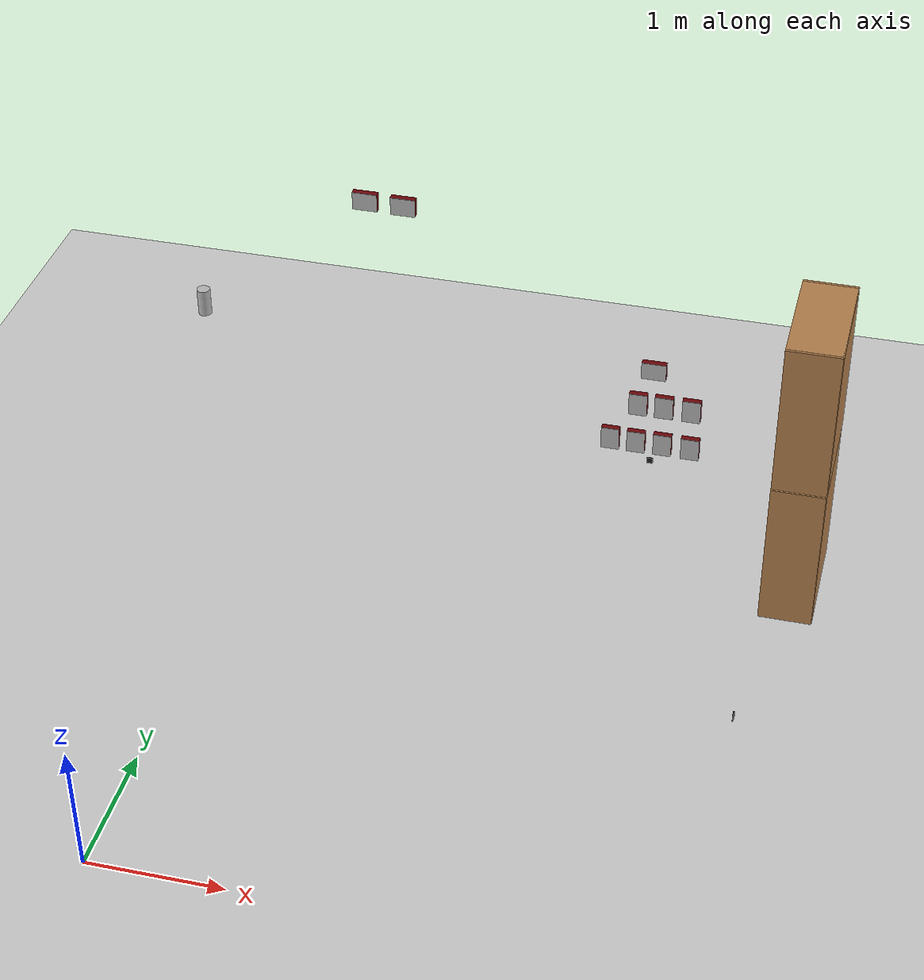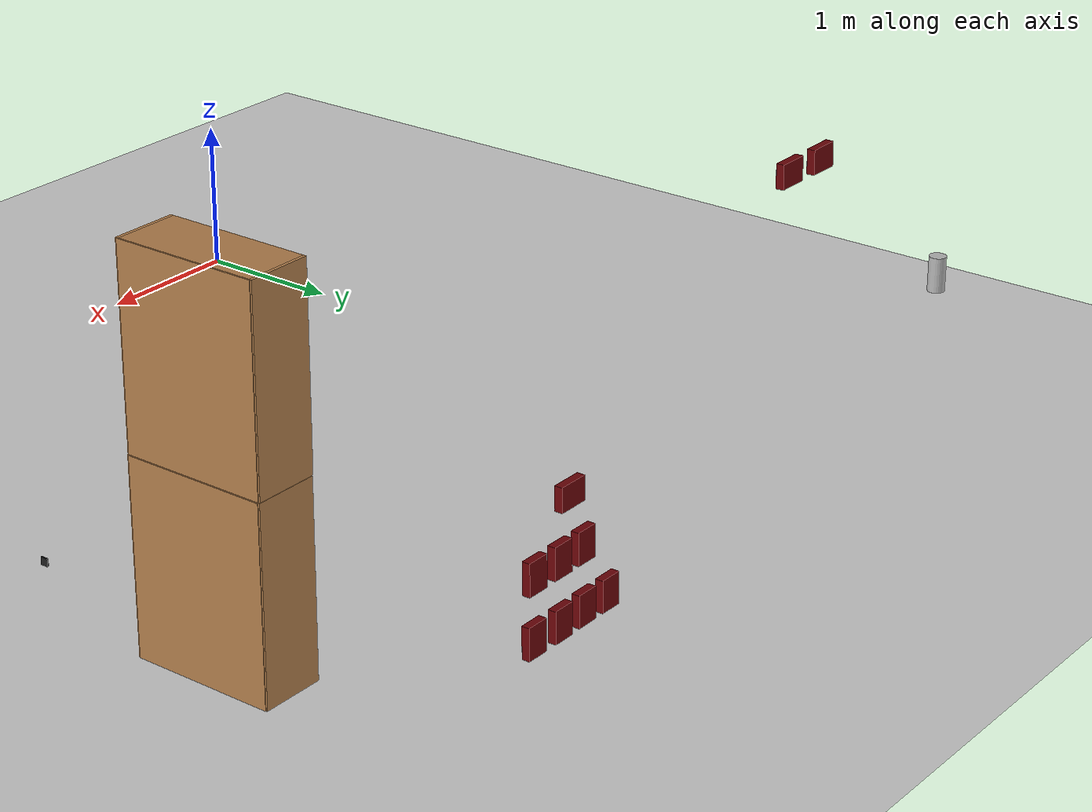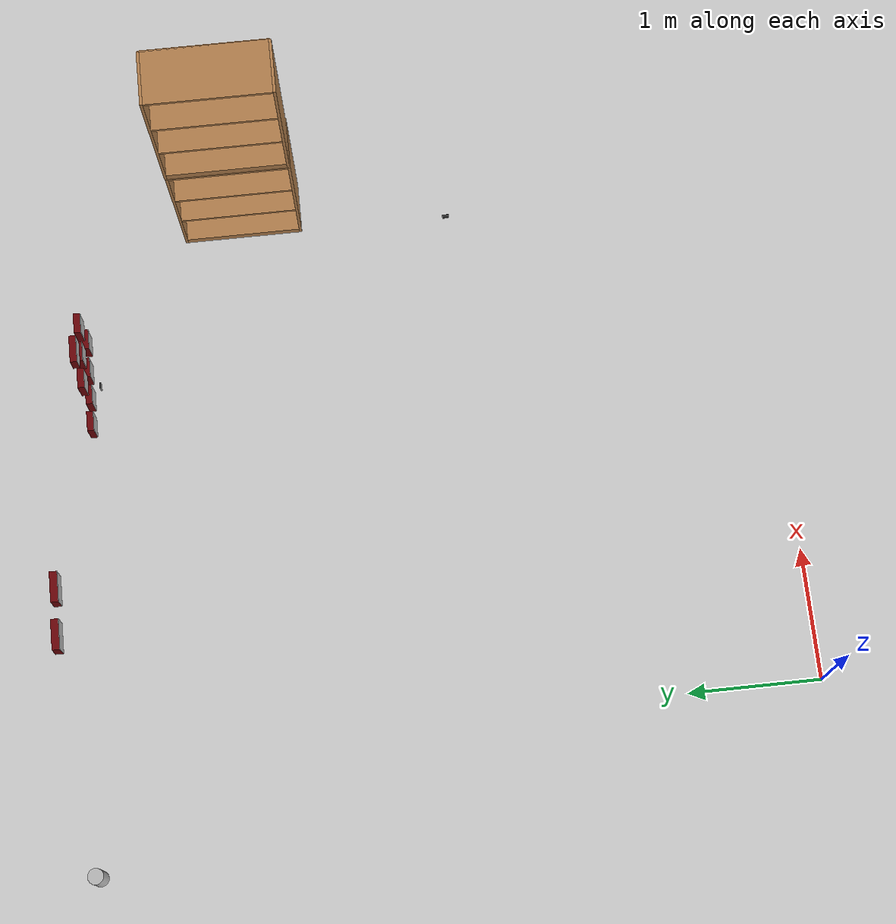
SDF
<sdf version="1.7">
 <world name="default">
  <model name="ground_plane">
   <static>1</static>
   <link name="link">
    <collision name="collision">
     <geometry><plane><normal>0 0 1</normal><size>100 100</size></plane></geometry>
     <surface><friction><ode><mu>100</mu><mu2>50</mu2></ode></friction></surface>
    </collision>
    <visual name="visual">
     <cast_shadows>0</cast_shadows>
     <geometry><plane><normal>0 0 1</normal><size>100 100</size></plane></geometry>
     <material>
      <script><uri>file://media/materials/scripts/gazebo.material</uri><name>Gazebo/Grey</name></script>
     </material>
    </visual>
   </link>
  </model>
  <model name="bookshelf_4_clone">
   <static>1</static>
   <link name="link">
    <inertial><mass>1</mass></inertial>
    <collision name="back">
     <pose>0 0.005 0.6 0 -0 0</pose>
     <geometry><box><size>0.9 0.01 1.2</size></box></geometry>
    </collision>
    <visual name="visual1">
     <pose>0 0.005 0.6 0 -0 0</pose>
     <geometry><box><size>0.9 0.01 1.2</size></box></geometry>
     <material>
      <script><uri>file://media/materials/scripts/gazebo.material</uri><name>Gazebo/Wood</name></script>
     </material>
    </visual>
    <collision name="left_side">
     <pose>0.45 -0.195 0.6 0 -0 0</pose>
     <geometry><box><size>0.02 0.4 1.2</size></box></geometry>
    </collision>
    <visual name="visual2">
     <pose>0.45 -0.195 0.6 0 -0 0</pose>
     <geometry><box><size>0.02 0.4 1.2</size></box></geometry>
     <material>
      <script><uri>file://media/materials/scripts/gazebo.material</uri><name>Gazebo/Wood</name></script>
     </material>
    </visual>
    <collision name="right_side">
     <pose>-0.45 -0.195 0.6 0 -0 0</pose>
     <geometry><box><size>0.02 0.4 1.2</size></box></geometry>
    </collision>
    <visual name="visual3">
     <pose>-0.45 -0.195 0.6 0 -0 0</pose>
     <geometry><box><size>0.02 0.4 1.2</size></box></geometry>
     <material>
      <script><uri>file://media/materials/scripts/gazebo.material</uri><name>Gazebo/Wood</name></script>
     </material>
    </visual>
    <collision name="bottom">
     <pose>0 -0.195 0.03 0 -0 0</pose>
     <geometry><box><size>0.88 0.4 0.06</size></box></geometry>
    </collision>
    <visual name="visual4">
     <pose>0 -0.195 0.03 0 -0 0</pose>
     <geometry><box><size>0.88 0.4 0.06</size></box></geometry>
     <material>
      <script><uri>file://media/materials/scripts/gazebo.material</uri><name>Gazebo/Wood</name></script>
     </material>
    </visual>
    <collision name="top">
     <pose>0 -0.195 1.19 0 -0 0</pose>
     <geometry><box><size>0.88 0.4 0.02</size></box></geometry>
    </collision>
    <visual name="visual5">
     <pose>0 -0.195 1.19 0 -0 0</pose>
     <geometry><box><size>0.88 0.4 0.02</size></box></geometry>
     <material>
      <script><uri>file://media/materials/scripts/gazebo.material</uri><name>Gazebo/Wood</name></script>
     </material>
    </visual>
    <collision name="low_shelf">
     <pose>0 -0.195 0.43 0 -0 0</pose>
     <geometry><box><size>0.88 0.4 0.02</size></box></geometry>
    </collision>
    <visual name="visual6">
     <pose>0 -0.195 0.43 0 -0 0</pose>
     <geometry><box><size>0.88 0.4 0.02</size></box></geometry>
     <material>
      <script><uri>file://media/materials/scripts/gazebo.material</uri><name>Gazebo/Wood</name></script>
     </material>
    </visual>
    <collision name="high_shelf">
     <pose>0 -0.195 0.8 0 -0 0</pose>
     <geometry><box><size>0.88 0.4 0.02</size></box></geometry>
    </collision>
    <visual name="visual7">
     <pose>0 -0.195 0.8 0 -0 0</pose>
     <geometry><box><size>0.88 0.4 0.02</size></box></geometry>
     <material>
      <script><uri>file://media/materials/scripts/gazebo.material</uri><name>Gazebo/Wood</name></script>
     </material>
    </visual>
   </link>
   <pose>4.37345 3.97883 0 0 0 -1.5727</pose>
  </model>
  <model name="bookshelf_4_clone_1_clone_clone">
   <static>1</static>
   <link name="link">
    <inertial><mass>1</mass></inertial>
    <collision name="back">
     <pose>0 0.005 0.6 0 -0 0</pose>
     <geometry><box><size>0.9 0.01 1.2</size></box></geometry>
    </collision>
    <visual name="visual1">
     <pose>0 0.005 0.6 0 -0 0</pose>
     <geometry><box><size>0.9 0.01 1.2</size></box></geometry>
     <material>
      <script><uri>file://media/materials/scripts/gazebo.material</uri><name>Gazebo/Wood</name></script>
     </material>
    </visual>
    <collision name="left_side">
     <pose>0.45 -0.195 0.6 0 -0 0</pose>
     <geometry><box><size>0.02 0.4 1.2</size></box></geometry>
    </collision>
    <visual name="visual2">
     <pose>0.45 -0.195 0.6 0 -0 0</pose>
     <geometry><box><size>0.02 0.4 1.2</size></box></geometry>
     <material>
      <script><uri>file://media/materials/scripts/gazebo.material</uri><name>Gazebo/Wood</name></script>
     </material>
    </visual>
    <collision name="right_side">
     <pose>-0.45 -0.195 0.6 0 -0 0</pose>
     <geometry><box><size>0.02 0.4 1.2</size></box></geometry>
    </collision>
    <visual name="visual3">
     <pose>-0.45 -0.195 0.6 0 -0 0</pose>
     <geometry><box><size>0.02 0.4 1.2</size></box></geometry>
     <material>
      <script><uri>file://media/materials/scripts/gazebo.material</uri><name>Gazebo/Wood</name></script>
     </material>
    </visual>
    <collision name="bottom">
     <pose>0 -0.195 0.03 0 -0 0</pose>
     <geometry><box><size>0.88 0.4 0.06</size></box></geometry>
    </collision>
    <visual name="visual4">
     <pose>0 -0.195 0.03 0 -0 0</pose>
     <geometry><box><size>0.88 0.4 0.06</size></box></geometry>
     <material>
      <script><uri>file://media/materials/scripts/gazebo.material</uri><name>Gazebo/Wood</name></script>
     </material>
    </visual>
    <collision name="top">
     <pose>0 -0.195 1.19 0 -0 0</pose>
     <geometry><box><size>0.88 0.4 0.02</size></box></geometry>
    </collision>
    <visual name="visual5">
     <pose>0 -0.195 1.19 0 -0 0</pose>
     <geometry><box><size>0.88 0.4 0.02</size></box></geometry>
     <material>
      <script><uri>file://media/materials/scripts/gazebo.material</uri><name>Gazebo/Wood</name></script>
     </material>
    </visual>
    <collision name="low_shelf">
     <pose>0 -0.195 0.43 0 -0 0</pose>
     <geometry><box><size>0.88 0.4 0.02</size></box></geometry>
    </collision>
    <visual name="visual6">
     <pose>0 -0.195 0.43 0 -0 0</pose>
     <geometry><box><size>0.88 0.4 0.02</size></box></geometry>
     <material>
      <script><uri>file://media/materials/scripts/gazebo.material</uri><name>Gazebo/Wood</name></script>
     </material>
    </visual>
    <collision name="high_shelf">
     <pose>0 -0.195 0.8 0 -0 0</pose>
     <geometry><box><size>0.88 0.4 0.02</size></box></geometry>
    </collision>
    <visual name="visual7">
     <pose>0 -0.195 0.8 0 -0 0</pose>
     <geometry><box><size>0.88 0.4 0.02</size></box></geometry>
     <material>
      <script><uri>file://media/materials/scripts/gazebo.material</uri><name>Gazebo/Wood</name></script>
     </material>
    </visual>
   </link>
   <pose>4.37481 3.98386 1.20741 0 0 -1.5727</pose>
  </model>
  <model name="biscuit_box_clone_clone_clone_clone">
   <link name="link">
    <pose>0 0 0.025 0 -0 0</pose>
    <visual name="visual">
     <geometry><box><size>0.2 0.15 0.05</size></box></geometry>
     <material>
      <ambient>0.423 0.019 0.035 1</ambient>
      <diffuse>0.423 0.019 0.035 1</diffuse>
      <specular>0.01 0.01 0.01 1</specular>
      <emissive>0 0 0 1</emissive>
     </material>
    </visual>
    <collision name="collision"><geometry><box><size>0.1 0.1 0.15</size></box></geometry></collision>
   </link>
   <link name="link_1">
    <pose>0 0 0.05 0 -0 0</pose>
    <visual name="visual">
     <geometry><box><size>0.2 0.15 0.001</size></box></geometry>
     <material>
      <script>
       <uri>model://biscuit_box/materials/scripts</uri>
       <uri>model://biscuit_box/materials/textures</uri>
       <name>biscuit_pat</name>
      </script>
     </material>
    </visual>
    <collision name="collision"><geometry><box><size>0.1 0.1 0.15</size></box></geometry></collision>
   </link>
   <static>1</static>
   <pose>2.71586 5.2638 0.162905 -2.92419 -1.54924 -1.78824</pose>
  </model>
  <model name="biscuit_box_clone_clone_clone_clone_clone">
   <link name="link">
    <pose>0 0 0.025 0 -0 0</pose>
    <visual name="visual">
     <geometry><box><size>0.2 0.15 0.05</size></box></geometry>
     <material>
      <ambient>0.423 0.019 0.035 1</ambient>
      <diffuse>0.423 0.019 0.035 1</diffuse>
      <specular>0.01 0.01 0.01 1</specular>
      <emissive>0 0 0 1</emissive>
     </material>
    </visual>
    <collision name="collision"><geometry><box><size>0.1 0.1 0.15</size></box></geometry></collision>
   </link>
   <link name="link_1">
    <pose>0 0 0.05 0 -0 0</pose>
    <visual name="visual">
     <geometry><box><size>0.2 0.15 0.001</size></box></geometry>
     <material>
      <script>
       <uri>model://biscuit_box/materials/scripts</uri>
       <uri>model://biscuit_box/materials/textures</uri>
       <name>biscuit_pat</name>
      </script>
     </material>
    </visual>
    <collision name="collision"><geometry><box><size>0.1 0.1 0.15</size></box></geometry></collision>
   </link>
   <static>1</static>
   <pose>2.50305 5.26523 0.162905 -2.92419 -1.54924 -1.78824</pose>
  </model>
  <model name="biscuit_box_clone_clone_clone_clone_clone_0">
   <link name="link">
    <pose>0 0 0.025 0 -0 0</pose>
    <visual name="visual">
     <geometry><box><size>0.2 0.15 0.05</size></box></geometry>
     <material>
      <ambient>0.423 0.019 0.035 1</ambient>
      <diffuse>0.423 0.019 0.035 1</diffuse>
      <specular>0.01 0.01 0.01 1</specular>
      <emissive>0 0 0 1</emissive>
     </material>
    </visual>
    <collision name="collision"><geometry><box><size>0.1 0.1 0.15</size></box></geometry></collision>
   </link>
   <link name="link_1">
    <pose>0 0 0.05 0 -0 0</pose>
    <visual name="visual">
     <geometry><box><size>0.2 0.15 0.001</size></box></geometry>
     <material>
      <script>
       <uri>model://biscuit_box/materials/scripts</uri>
       <uri>model://biscuit_box/materials/textures</uri>
       <name>biscuit_pat</name>
      </script>
     </material>
    </visual>
    <collision name="collision"><geometry><box><size>0.1 0.1 0.15</size></box></geometry></collision>
   </link>
   <static>1</static>
   <pose>2.93276 5.26818 0.162905 -2.92419 -1.54924 -1.78824</pose>
  </model>
  <model name="biscuit_box_clone_clone_clone_clone_clone_1_clone">
   <link name="link">
    <pose>0 0 0.025 0 -0 0</pose>
    <visual name="visual">
     <geometry><box><size>0.2 0.15 0.05</size></box></geometry>
     <material>
      <ambient>0.423 0.019 0.035 1</ambient>
      <diffuse>0.423 0.019 0.035 1</diffuse>
      <specular>0.01 0.01 0.01 1</specular>
      <emissive>0 0 0 1</emissive>
     </material>
    </visual>
    <collision name="collision"><geometry><box><size>0.1 0.1 0.15</size></box></geometry></collision>
   </link>
   <link name="link_1">
    <pose>0 0 0.05 0 -0 0</pose>
    <visual name="visual">
     <geometry><box><size>0.2 0.15 0.001</size></box></geometry>
     <material>
      <script>
       <uri>model://biscuit_box/materials/scripts</uri>
       <uri>model://biscuit_box/materials/textures</uri>
       <name>biscuit_pat</name>
      </script>
     </material>
    </visual>
    <collision name="collision"><geometry><box><size>0.1 0.1 0.15</size></box></geometry></collision>
   </link>
   <static>1</static>
   <pose>2.93026 5.25848 0.541315 -2.92419 -1.54924 -1.78824</pose>
  </model>
  <model name="biscuit_box_clone_clone_clone_clone_clone_1_clone_clone">
   <link name="link">
    <pose>0 0 0.025 0 -0 0</pose>
    <visual name="visual">
     <geometry><box><size>0.2 0.15 0.05</size></box></geometry>
     <material>
      <ambient>0.423 0.019 0.035 1</ambient>
      <diffuse>0.423 0.019 0.035 1</diffuse>
      <specular>0.01 0.01 0.01 1</specular>
      <emissive>0 0 0 1</emissive>
     </material>
    </visual>
    <collision name="collision"><geometry><box><size>0.1 0.1 0.15</size></box></geometry></collision>
   </link>
   <link name="link_1">
    <pose>0 0 0.05 0 -0 0</pose>
    <visual name="visual">
     <geometry><box><size>0.2 0.15 0.001</size></box></geometry>
     <material>
      <script>
       <uri>model://biscuit_box/materials/scripts</uri>
       <uri>model://biscuit_box/materials/textures</uri>
       <name>biscuit_pat</name>
      </script>
     </material>
    </visual>
    <collision name="collision"><geometry><box><size>0.1 0.1 0.15</size></box></geometry></collision>
   </link>
   <static>1</static>
   <pose>3.1536 5.26061 0.541315 -2.92419 -1.54924 -1.78824</pose>
  </model>
  <model name="biscuit_box_clone_clone_clone_clone_clone_0_clone">
   <link name="link">
    <pose>0 0 0.025 0 -0 0</pose>
    <visual name="visual">
     <geometry><box><size>0.2 0.15 0.05</size></box></geometry>
     <material>
      <ambient>0.423 0.019 0.035 1</ambient>
      <diffuse>0.423 0.019 0.035 1</diffuse>
      <specular>0.01 0.01 0.01 1</specular>
      <emissive>0 0 0 1</emissive>
     </material>
    </visual>
    <collision name="collision"><geometry><box><size>0.1 0.1 0.15</size></box></geometry></collision>
   </link>
   <link name="link_1">
    <pose>0 0 0.05 0 -0 0</pose>
    <visual name="visual">
     <geometry><box><size>0.2 0.15 0.001</size></box></geometry>
     <material>
      <script>
       <uri>model://biscuit_box/materials/scripts</uri>
       <uri>model://biscuit_box/materials/textures</uri>
       <name>biscuit_pat</name>
      </script>
     </material>
    </visual>
    <collision name="collision"><geometry><box><size>0.1 0.1 0.15</size></box></geometry></collision>
   </link>
   <static>1</static>
   <pose>3.16156 5.26581 0.162905 -2.92419 -1.54924 -1.78824</pose>
  </model>
  <model name="biscuit_box_clone_clone_clone_clone_clone_1_clone_clone_0">
   <link name="link">
    <pose>0 0 0.025 0 -0 0</pose>
    <visual name="visual">
     <geometry><box><size>0.2 0.15 0.05</size></box></geometry>
     <material>
      <ambient>0.423 0.019 0.035 1</ambient>
      <diffuse>0.423 0.019 0.035 1</diffuse>
      <specular>0.01 0.01 0.01 1</specular>
      <emissive>0 0 0 1</emissive>
     </material>
    </visual>
    <collision name="collision"><geometry><box><size>0.1 0.1 0.15</size></box></geometry></collision>
   </link>
   <link name="link_1">
    <pose>0 0 0.05 0 -0 0</pose>
    <visual name="visual">
     <geometry><box><size>0.2 0.15 0.001</size></box></geometry>
     <material>
      <script>
       <uri>model://biscuit_box/materials/scripts</uri>
       <uri>model://biscuit_box/materials/textures</uri>
       <name>biscuit_pat</name>
      </script>
     </material>
    </visual>
    <collision name="collision"><geometry><box><size>0.1 0.1 0.15</size></box></geometry></collision>
   </link>
   <static>1</static>
   <pose>2.71958 5.25709 0.541315 -2.92419 -1.54924 -1.78824</pose>
  </model>
  <model name="beer_3_clone_clone_clone_clone_clone_2">
   <link name="link">
    <pose>0 0 0.115 0 -0 0</pose>
    <inertial>
     <mass>0.39</mass>
     <inertia><ixx>0.00058</ixx><ixy>0</ixy><ixz>0</ixz><iyy>0.00058</iyy><iyz>0</iyz><izz>0.00019</izz></inertia>
    </inertial>
    <collision name="collision">
     <geometry><cylinder><radius>0.055</radius><length>0.23</length></cylinder></geometry>
    </collision>
    <visual name="visual">
     <geometry><cylinder><radius>0.055</radius><length>0.23</length></cylinder></geometry>
     <material>
      <script>
       <uri>model://beer/materials/scripts</uri>
       <uri>model://beer/materials/textures</uri>
       <name>Beer/Diffuse</name>
      </script>
     </material>
    </visual>
   </link>
   <pose>-0.945603 5.26098 0.809992 2.6e-05 1.3e-05 0.045697</pose>
  </model>
  <model name="biscuit_box_clone_0_clone_0_clone_3">
   <link name="link">
    <pose>0 0 0.025 0 -0 0</pose>
    <visual name="visual">
     <geometry><box><size>0.2 0.15 0.05</size></box></geometry>
     <material>
      <ambient>0.423 0.019 0.035 1</ambient>
      <diffuse>0.423 0.019 0.035 1</diffuse>
      <specular>0.01 0.01 0.01 1</specular>
      <emissive>0 0 0 1</emissive>
     </material>
    </visual>
    <collision name="collision"><geometry><box><size>0.1 0.1 0.15</size></box></geometry></collision>
   </link>
   <link name="link_1">
    <pose>0 0 0.05 0 -0 0</pose>
    <visual name="visual">
     <geometry><box><size>0.2 0.15 0.001</size></box></geometry>
     <material>
      <script>
       <uri>model://biscuit_box/materials/scripts</uri>
       <uri>model://biscuit_box/materials/textures</uri>
       <name>biscuit_pat</name>
      </script>
     </material>
    </visual>
    <collision name="collision"><geometry><box><size>0.1 0.1 0.15</size></box></geometry></collision>
   </link>
   <static>1</static>
   <pose>0.795301 5.25875 2.09346 1.59184 -0 0</pose>
  </model>
  <model name="biscuit_box_clone_0_clone_0_clone_3_clone_0">
   <link name="link">
    <pose>0 0 0.025 0 -0 0</pose>
    <visual name="visual">
     <geometry><box><size>0.2 0.15 0.05</size></box></geometry>
     <material>
      <ambient>0.423 0.019 0.035 1</ambient>
      <diffuse>0.423 0.019 0.035 1</diffuse>
      <specular>0.01 0.01 0.01 1</specular>
      <emissive>0 0 0 1</emissive>
     </material>
    </visual>
    <collision name="collision"><geometry><box><size>0.1 0.1 0.15</size></box></geometry></collision>
   </link>
   <link name="link_1">
    <pose>0 0 0.05 0 -0 0</pose>
    <visual name="visual">
     <geometry><box><size>0.2 0.15 0.001</size></box></geometry>
     <material>
      <script>
       <uri>model://biscuit_box/materials/scripts</uri>
       <uri>model://biscuit_box/materials/textures</uri>
       <name>biscuit_pat</name>
      </script>
     </material>
    </visual>
    <collision name="collision"><geometry><box><size>0.1 0.1 0.15</size></box></geometry></collision>
   </link>
   <static>1</static>
   <pose>0.485837 5.26619 2.09346 1.59184 -0 0</pose>
  </model>
  <model name="biscuit_box_clone_0_clone_0_clone_clone_0">
   <link name="link">
    <pose>0 0 0.025 0 -0 0</pose>
    <visual name="visual">
     <geometry><box><size>0.2 0.15 0.05</size></box></geometry>
     <material>
      <ambient>0.423 0.019 0.035 1</ambient>
      <diffuse>0.423 0.019 0.035 1</diffuse>
      <specular>0.01 0.01 0.01 1</specular>
      <emissive>0 0 0 1</emissive>
     </material>
    </visual>
    <collision name="collision"><geometry><box><size>0.1 0.1 0.15</size></box></geometry></collision>
   </link>
   <link name="link_1">
    <pose>0 0 0.05 0 -0 0</pose>
    <visual name="visual">
     <geometry><box><size>0.2 0.15 0.001</size></box></geometry>
     <material>
      <script>
       <uri>model://biscuit_box/materials/scripts</uri>
       <uri>model://biscuit_box/materials/textures</uri>
       <name>biscuit_pat</name>
      </script>
     </material>
    </visual>
    <collision name="collision"><geometry><box><size>0.1 0.1 0.15</size></box></geometry></collision>
   </link>
   <static>1</static>
   <pose>2.834 5.24883 0.888325 1.59184 -0 0</pose>
  </model>
  <model name="blackcube">
   <static>1</static>
   <link name="link">
    <pose>0 0 0.03 0 -0 0</pose>
    <collision name="collision"><geometry><box><size>0.1 0.1 0.1</size></box></geometry></collision>
    <visual name="visual">
     <geometry><box><size>0.05 0.01 0.05</size></box></geometry>
     <material>
      <script><uri>file://media/materials/scripts/gazebo.material</uri><name>Gazebo/Black</name></script>
     </material>
    </visual>
   </link>
   <pose>2.84638 5.17526 0 0 -0 0</pose>
  </model>
  <model name="blackcube_0_clone">
   <static>1</static>
   <link name="link">
    <pose>0 0 0.03 0 -0 0</pose>
    <collision name="collision"><geometry><box><size>0.1 0.1 0.1</size></box></geometry></collision>
    <visual name="visual">
     <geometry><box><size>0.05 0.01 0.05</size></box></geometry>
     <material>
      <script><uri>file://media/materials/scripts/gazebo.material</uri><name>Gazebo/Black</name></script>
     </material>
    </visual>
   </link>
   <pose>3.97264 2.37789 0 0 0 -1.57453</pose>
  </model>
 </world>
</sdf>
